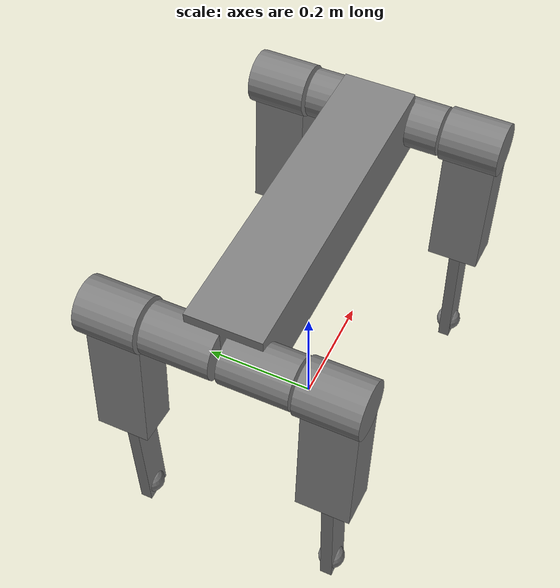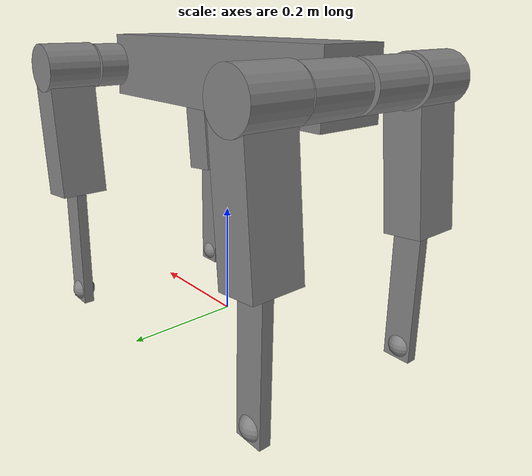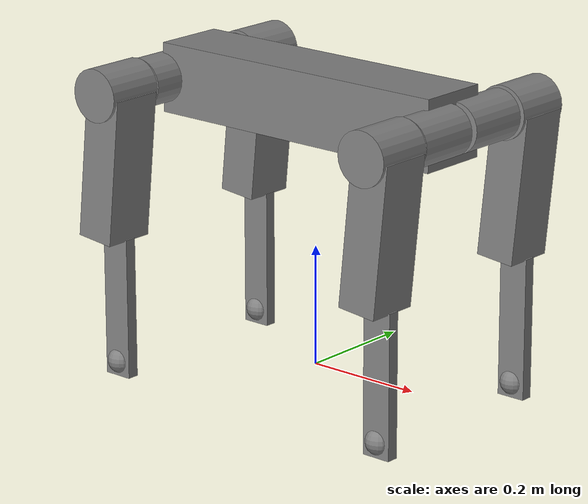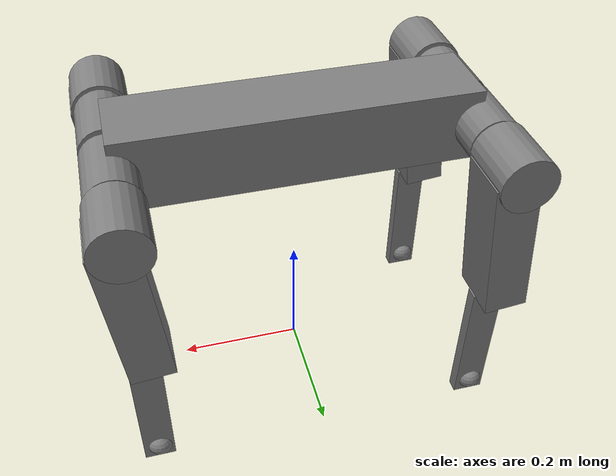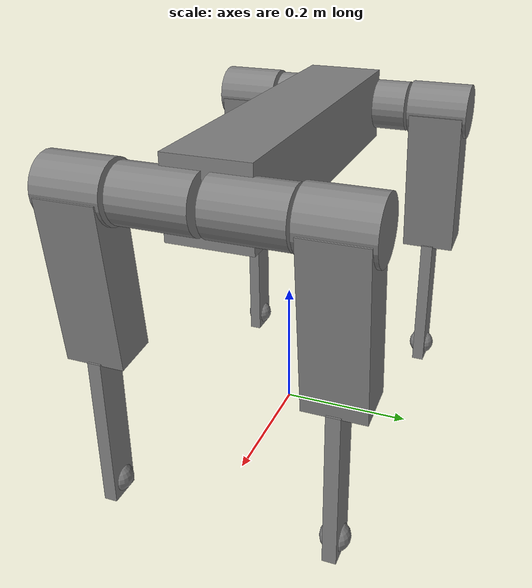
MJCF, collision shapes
<mujoco model="arcdog">
  <compiler angle="radian" meshdir="../assets" autolimits="true" />

  <option cone="elliptic" impratio="100" />

  <default>
    <default class="arcdog">
      <geom friction="0.4" margin="0.001" condim="1"/>
      <joint axis="0 1 0" damping="0.1" armature="0.01" frictionloss="0.2"/>
      <motor ctrlrange="-23.7 23.7"/>
      <default class="abduction">
        <joint axis="1 0 0" range="-1.22173 1.22173"/>
      </default>
      <default class="hip">
        <default class="front_hip">
          <joint range="-1.5708 3.4907"/>
        </default>
        <default class="back_hip">
          <joint range="-1.5708 3.4907"/>
        </default>
      </default>
      <default class="knee">
        <joint range="-2.77507 -0.645772"/>
        <motor ctrlrange="-45.43 45.43"/>
      </default>
      <default class="visual">
        <geom type="mesh" contype="0" conaffinity="0" group="2"/>
      </default>
      <default class="collision">
        <geom group="3"/>
        <default class="foot">
          <geom size="0.022" pos="-0.002 0 -0.213" priority="1" condim="6"
            friction="0.4 0.02 0.01"/>
        </default>
      </default>
    </default>
  </default>

  <asset>
    <material name="metal" rgba=".9 .95 .95 1" />
    <material name="black" rgba="0 0 0 1" />
    <material name="white" rgba="1 1 1 1" />
    <material name="gray" rgba="0.671705 0.692426 0.774270 1" />

    <mesh file="trunk.stl" scale="1 1 1"/>
    <mesh file="hip.stl"/>
    <mesh file="thigh.stl"/>
    <mesh file="thigh_mirror.stl"/>
    <mesh file="calf.stl"/>
    <mesh file="foot.obj" />
  </asset>

  <worldbody>
    <body name="base_link" pos="0 0 0.445" childclass="arcdog">
      <inertial pos="0.021112 0 -0.005366" quat="-0.000543471 0.713435 -0.00173769 0.700719"
        mass="8.4845"
        diaginertia="0.031520962 0.143653339 0.159618308" />
      <freejoint />
      <geom mesh="trunk" material="gray" class="visual" />
      <geom size="0.274 0.0605 0.058" type="box" class="collision"/>
      <geom size="0.0005 0.0005 0.0005" type="box" class="collision"/>
      <site name="imu" pos="-0.02557 0 0.04232" />

      <body name="FL_hip" pos="0.274 0.0605 0">
        <inertial pos="-0.006155 -0.00693 2e-06" quat="0.494941 0.495107 0.504986 0.504868" mass="0.8365" diaginertia="0.00105526 0.000764676 0.000594479" />
        <joint name="FL_hip_joint" class="abduction" />
        <geom mesh="hip" material="metal" class="visual" />
        <geom size="0.041 0.05475" quat="0.707107 0.707107 0 0" type="cylinder" class="collision" />
        <body name="FL_thigh" pos="0 0.1095 0">
          <inertial pos="0.003996 0.028346 -0.020538" quat="0.983926 0.107423 0.0626024 -0.128181" mass="1.987" diaginertia="0.00895244 0.00775085 0.0028052" />
          <joint name="FL_thigh_joint" class="front_hip" />
          <geom mesh="thigh" material="metal" class="visual" />
          <geom size="0.12225 0.044 0.033985" pos="0 0 -0.12225" quat="0.670882 0 0.741564 0" type="box" class="collision" />
          <geom size="0.044 0.04925" quat="0.707107 0.707107 0 0" type="cylinder" class="collision" />
          <body name="FL_calf" pos="0 0 -0.2445">
            <inertial pos="-0.000681132 0 -0.141397" quat="0.707094 -0.00418023 -0.00418023 0.707094" mass="0.273" diaginertia="0.00228702 0.00228252 3.62187e-05" />
            <joint name="FL_calf_joint" class="knee" />
            <geom mesh="calf" material="gray" class="visual" />
            <geom size="0.11852 0.01 0.025" pos="0 0 -0.11852" quat="0.707107 0 0.707107 0" type="box" class="collision" />
            <geom pos="0 0 -0.23704" mesh="foot" class="visual" material="black" />
            <geom name="FL_foot" class="foot" />
            <body name="FL_foot" pos="0 0 -0.23704" />
          </body>
        </body>
      </body>

      <body name="FR_hip" pos="0.274 -0.0605 0">
        <inertial pos="-0.006155 0.00693 2e-06" quat="0.504868 0.504986 0.495107 0.494941" mass="0.8365" diaginertia="0.00105526 0.000764676 0.000594479" />
        <joint name="FR_hip_joint" class="abduction" />
        <geom mesh="hip" material="metal" class="visual" quat="4.63268e-05 1 0 0" />
        <geom size="0.041 0.05475" quat="0.707107 0.707107 0 0" type="cylinder"
          class="collision" />
        <body name="FR_thigh" pos="0 -0.1095 0">
          <inertial pos="0.003996 -0.028346 -0.020538" quat="0.983926 -0.107423 0.0626024 0.128181" mass="1.987" diaginertia="0.00895244 0.00775085 0.0028052" />
          <joint name="FR_thigh_joint" class="front_hip" />
          <geom mesh="thigh_mirror" material="metal" class="visual" />
          <geom size="0.12225 0.044 0.033985" pos="0 0 -0.12225" quat="0.670882 0 0.741564 0" type="box" class="collision" />
          <geom size="0.044 0.04925" quat="0.707107 0.707107 0 0" type="cylinder" class="collision" />
          <body name="FR_calf" pos="0 0 -0.2445">
            <inertial pos="-0.000681132 0 -0.141397" quat="0.707094 -0.00418023 -0.00418023 0.707094" mass="0.273" diaginertia="0.00228702 0.00228252 3.62187e-05" />
            <joint name="FR_calf_joint" class="knee" />
            <geom mesh="calf" material="gray" class="visual" />
            <geom size="0.11852 0.01 0.025" pos="0 0 -0.11852" quat="0.707107 0 0.707107 0" type="box" class="collision" />
            <geom pos="0 0 -0.23704" mesh="foot" class="visual" material="black" />
            <geom name="FR_foot" class="foot" />
            <body name="FR_foot" pos="0 0 -0.23704" />
          </body>
        </body>
      </body>

      <body name="RL_hip" pos="-0.274 0.0605 0">
        <inertial pos="0.006155 -0.00693 2e-06" quat="0.504986 0.504868 0.494941 0.495107" mass="0.8365" diaginertia="0.00105526 0.000764676 0.000594479" />
        <joint name="RL_hip_joint" class="abduction" />
        <geom mesh="hip" material="metal" class="visual" quat="4.63268e-05 0 1 0" />
        <geom size="0.041 0.05475" quat="0.707107 0.707107 0 0" type="cylinder"
          class="collision" />
        <body name="RL_thigh" pos="0 0.1095 0">
          <inertial pos="0.003996 0.028346 -0.020538" quat="0.983926 0.107423 0.0626024 -0.128181" mass="1.987" diaginertia="0.00895244 0.00775085 0.0028052" />
          <joint name="RL_thigh_joint" class="back_hip" />
          <geom mesh="thigh" material="metal" class="visual" />
          <geom size="0.12225 0.044 0.033985" pos="0 0 -0.12225" quat="0.670882 0 0.741564 0" type="box" class="collision" />
          <geom size="0.044 0.04925" quat="0.707107 0.707107 0 0" type="cylinder" class="collision" />
          <body name="RL_calf" pos="0 0 -0.2445">
            <inertial pos="-0.000681132 0 -0.141397" quat="0.707094 -0.00418023 -0.00418023 0.707094" mass="0.273" diaginertia="0.00228702 0.00228252 3.62187e-05" />
            <joint name="RL_calf_joint" class="knee" />
            <geom mesh="calf" material="gray" class="visual" />
            <geom size="0.11852 0.01 0.025" pos="0 0 -0.11852" quat="0.707107 0 0.707107 0" type="box" class="collision" />
            <geom pos="0 0 -0.23704" mesh="foot" class="visual" material="black" />
            <geom name="RL_foot" class="foot" />
            <body name="RL_foot" pos="0 0 -0.23704" />
          </body>
        </body>
      </body>

      <body name="RR_hip" pos="-0.274 -0.0605 0">
        <inertial pos="0.006155 0.00693 2e-06" quat="0.495107 0.494941 0.504868 0.504986" mass="0.8365" diaginertia="0.00105526 0.000764676 0.000594479" />
        <joint name="RR_hip_joint" class="abduction" />
        <geom mesh="hip" material="metal" class="visual"
          quat="2.14617e-09 4.63268e-05 4.63268e-05 -1" />
        <geom size="0.041 0.05475" quat="0.707107 0.707107 0 0" type="cylinder"
          class="collision" />
        <body name="RR_thigh" pos="0 -0.1095 0">
          <inertial pos="0.003996 -0.028346 -0.020538" quat="0.983926 -0.107423 0.0626024 0.128181" mass="1.987" diaginertia="0.00895244 0.00775085 0.0028052" />
          <joint name="RR_thigh_joint" class="back_hip" />
          <geom mesh="thigh_mirror" material="metal" class="visual" />
          <geom size="0.12225 0.044 0.033985" pos="0 0 -0.12225" quat="0.670882 0 0.741564 0" type="box" class="collision" />
          <geom size="0.044 0.04925" quat="0.707107 0.707107 0 0" type="cylinder" class="collision" />
          <body name="RR_calf" pos="0 0 -0.2445">
            <inertial pos="-0.000681132 0 -0.141397" quat="0.707094 -0.00418023 -0.00418023 0.707094" mass="0.273" diaginertia="0.00228702 0.00228252 3.62187e-05" />
            <joint name="RR_calf_joint" class="knee" />
            <geom mesh="calf" material="gray" class="visual" />
            <geom size="0.11852 0.01 0.025" pos="0 0 -0.11852" quat="0.707107 0 0.707107 0" type="box" class="collision" />
            <geom pos="0 0 -0.23704" mesh="foot" class="visual" material="black" />
            <geom name="RR_foot" class="foot" />
            <body name="RR_foot" pos="0 0 -0.23704" />
          </body>
        </body>
      </body>
    </body>
  </worldbody>

  <actuator>
    <motor class="abduction" name="FR_hip_joint" joint="FR_hip_joint" />
    <motor class="hip" name="FR_thigh_joint" joint="FR_thigh_joint" />
    <motor class="knee" name="FR_calf_joint" joint="FR_calf_joint" />
    <motor class="abduction" name="FL_hip_joint" joint="FL_hip_joint" />
    <motor class="hip" name="FL_thigh_joint" joint="FL_thigh_joint" />
    <motor class="knee" name="FL_calf_joint" joint="FL_calf_joint" />
    <motor class="abduction" name="RR_hip_joint" joint="RR_hip_joint" />
    <motor class="hip" name="RR_thigh_joint" joint="RR_thigh_joint" />
    <motor class="knee" name="RR_calf_joint" joint="RR_calf_joint" />
    <motor class="abduction" name="RL_hip_joint" joint="RL_hip_joint" />
    <motor class="hip" name="RL_thigh_joint" joint="RL_thigh_joint" />
    <motor class="knee" name="RL_calf_joint" joint="RL_calf_joint" />
  </actuator>

  <sensor>
    <jointpos name="FR_hip_pos" joint="FR_hip_joint" />
    <jointpos name="FR_thigh_pos" joint="FR_thigh_joint" />
    <jointpos name="FR_calf_pos" joint="FR_calf_joint" />
    <jointpos name="FL_hip_pos" joint="FL_hip_joint" />
    <jointpos name="FL_thigh_pos" joint="FL_thigh_joint" />
    <jointpos name="FL_calf_pos" joint="FL_calf_joint" />
    <jointpos name="RR_hip_pos" joint="RR_hip_joint" />
    <jointpos name="RR_thigh_pos" joint="RR_thigh_joint" />
    <jointpos name="RR_calf_pos" joint="RR_calf_joint" />
    <jointpos name="RL_hip_pos" joint="RL_hip_joint" />
    <jointpos name="RL_thigh_pos" joint="RL_thigh_joint" />
    <jointpos name="RL_calf_pos" joint="RL_calf_joint" />

    <jointvel name="FR_hip_vel" joint="FR_hip_joint" />
    <jointvel name="FR_thigh_vel" joint="FR_thigh_joint" />
    <jointvel name="FR_calf_vel" joint="FR_calf_joint" />
    <jointvel name="FL_hip_vel" joint="FL_hip_joint" />
    <jointvel name="FL_thigh_vel" joint="FL_thigh_joint" />
    <jointvel name="FL_calf_vel" joint="FL_calf_joint" />
    <jointvel name="RR_hip_vel" joint="RR_hip_joint" />
    <jointvel name="RR_thigh_vel" joint="RR_thigh_joint" />
    <jointvel name="RR_calf_vel" joint="RR_calf_joint" />
    <jointvel name="RL_hip_vel" joint="RL_hip_joint" />
    <jointvel name="RL_thigh_vel" joint="RL_thigh_joint" />
    <jointvel name="RL_calf_vel" joint="RL_calf_joint" />

    <jointactuatorfrc name="FR_hip_torque" joint="FR_hip_joint" noise="0.01" />
    <jointactuatorfrc name="FR_thigh_torque" joint="FR_thigh_joint" noise="0.01" />
    <jointactuatorfrc name="FR_calf_torque" joint="FR_calf_joint" noise="0.01" />
    <jointactuatorfrc name="FL_hip_torque" joint="FL_hip_joint" noise="0.01" />
    <jointactuatorfrc name="FL_thigh_torque" joint="FL_thigh_joint" noise="0.01" />
    <jointactuatorfrc name="FL_calf_torque" joint="FL_calf_joint" noise="0.01" />
    <jointactuatorfrc name="RR_hip_torque" joint="RR_hip_joint" noise="0.01" />
    <jointactuatorfrc name="RR_thigh_torque" joint="RR_thigh_joint" noise="0.01" />
    <jointactuatorfrc name="RR_calf_torque" joint="RR_calf_joint" noise="0.01" />
    <jointactuatorfrc name="RL_hip_torque" joint="RL_hip_joint" noise="0.01" />
    <jointactuatorfrc name="RL_thigh_torque" joint="RL_thigh_joint" noise="0.01" />
    <jointactuatorfrc name="RL_calf_torque" joint="RL_calf_joint" noise="0.01" />

    <framequat name="imu_quat" objtype="site" objname="imu" />
    <gyro name="imu_gyro" site="imu" />
    <accelerometer name="imu_acc" site="imu" />

    <framepos name="frame_pos" objtype="site" objname="imu" />
    <framelinvel name="frame_vel" objtype="site" objname="imu" />
  </sensor>

  <keyframe>
    <key name="home" qpos="0 0 0.35 1 0 0 0 0 0.9 -1.8 0 0.9 -1.8 0 0.9 -1.8 0 0.9 -1.8"
      ctrl="0 0.9 -1.8 0 0.9 -1.8 0 0.9 -1.8 0 0.9 -1.8" />
  </keyframe>
</mujoco>
